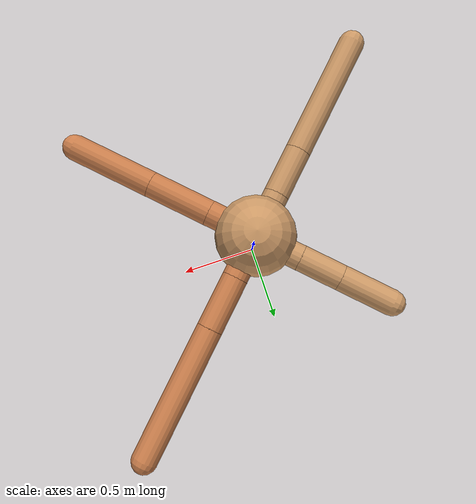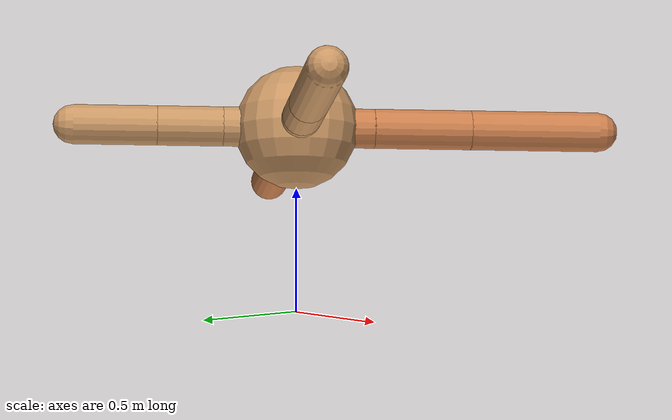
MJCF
<mujoco model="ant">
  <compiler angle="degree" coordinate="local" inertiafromgeom="true" />
  <option integrator="RK4" timestep="0.01" />
  <custom>
    <numeric data="0.0 0.0 0.55 1.0 0.0 0.0 0.0 0.0 1.0 0.0 -1.0 0.0 -1.0 0.0 1.0" name="init_qpos" />
  </custom>
  <default>
    <joint armature="1" damping="1" limited="true" />
    <geom conaffinity="0" condim="3" density="5.0" friction="1.5 0.1 0.1" margin="0.01" rgba="0.8 0.6 0.4 1" />
  </default>
  <worldbody>
    <body name="torso" pos="0 0 0.75">
      <geom name="torso_geom" pos="0 0 0" size="0.25" type="sphere" />

      <body name="front_left_leg" pos="0 0 0">
        <geom fromto="0.0 0.0 0.0 0.2 0.2 0.0" name="aux_1_geom" size="0.08" type="capsule" rgba=".8 .5 .3 1" />
        <body name="aux_1" pos="0.2 0.2 0.0">
          <joint axis="0 0 1" name="hip_1" pos="0.0 0.0 0.0" range="-40 40" type="hinge" />
          <geom fromto="0.0 0.0 0.0 0.2384781346265209 0.2384781346265209 0.0" name="left_leg_geom" size="0.08" type="capsule" rgba=".8 .5 .3 1" />
          <body pos="0.2384781346265209 0.2384781346265209 0.0" name="front_left_foot">
            <joint axis="-1 1 0" name="ankle_1" pos="0.0 0.0 0.0" range="30 100" type="hinge" />
            <geom fromto="0.0 0.0 0.0 0.5965523766626495 0.5965523766626495 0.0" name="left_ankle_geom" size="0.08" type="capsule" rgba=".8 .5 .3 1" />
          </body>
        </body>
      </body>
      <body name="front_right_leg" pos="0 0 0">
        <geom fromto="0.0 0.0 0.0 -0.21099090591503505 0.21099090591503505 0.0" name="aux_2_geom" size="0.08" type="capsule" />
        <body name="aux_2" pos="-0.21099090591503505 0.21099090591503505 0.0">
          <joint axis="0 0 1" name="hip_2" pos="0.0 0.0 0.0" range="-40 40" type="hinge" />
          <geom fromto="0.0 0.0 0.0 -0.18842142900307368 0.18842142900307368 0.0" name="right_leg_geom" size="0.08" type="capsule" />
          <body pos="-0.18842142900307368 0.18842142900307368 0.0" name="front_right_foot">
            <joint axis="1 1 0" name="ankle_2" pos="0.0 0.0 0.0" range="-100 -30" type="hinge" />
            <geom fromto="0.0 0.0 0.0 -0.23947868931685995 0.23947868931685995 0.0" name="right_ankle_geom" size="0.08" type="capsule" />
          </body>
        </body>
      </body>
      <body name="left_back_leg" pos="0 0 0">
        <geom fromto="0.0 0.0 0.0 -0.2 -0.2 0.0" name="aux_3_geom" size="0.08" type="capsule" />
        <body name="aux_3" pos="-0.2 -0.2 0.0">
          <joint axis="0 0 1" name="hip_3" pos="0.0 0.0 0.0" range="-40 40" type="hinge" />
          <geom fromto="0.0 0.0 0.0 -0.21292520827114286 -0.21292520827114286 0.0" name="back_leg_geom" size="0.08" type="capsule" />
          <body pos="-0.21292520827114286 -0.21292520827114286 0.0" name="left_back_foot">
            <joint axis="-1 1 0" name="ankle_3" pos="0.0 0.0 0.0" range="-100 -30" type="hinge" />
            <geom fromto="0.0 0.0 0.0 -0.5473888204339087 -0.5473888204339087 0.0" name="third_ankle_geom" size="0.08" type="capsule" />
          </body>
        </body>
      </body>
      <body name="right_back_leg" pos="0 0 0">
        <geom fromto="0.0 0.0 0.0 0.22255939807943126 -0.22255939807943126 0.0" name="aux_4_geom" size="0.08" type="capsule" rgba=".8 .5 .3 1" />
        <body name="aux_4" pos="0.22255939807943126 -0.22255939807943126 0.0">
          <joint axis="0 0 1" name="hip_4" pos="0.0 0.0 0.0" range="-40 40" type="hinge" />
          <geom fromto="0.0 0.0 0.0 0.2791683308230353 -0.2791683308230353 0.0" name="rightback_leg_geom" size="0.08" type="capsule" rgba=".8 .5 .3 1" />
          <body pos="0.2791683308230353 -0.2791683308230353 0.0" name="right_back_foot">
            <joint axis="1 1 0" name="ankle_4" pos="0.0 0.0 0.0" range="30 100" type="hinge" />
            <geom fromto="0.0 0.0 0.0 0.369070007598694 -0.369070007598694 0.0" name="fourth_ankle_geom" size="0.08" type="capsule" rgba=".8 .5 .3 1" />
          </body>
        </body>
      </body>
    </body>
  </worldbody>
  <actuator>
    <motor ctrllimited="true" ctrlrange="-1.0 1.0" joint="hip_4" gear="150" />
    <motor ctrllimited="true" ctrlrange="-1.0 1.0" joint="ankle_4" gear="150" />
    <motor ctrllimited="true" ctrlrange="-1.0 1.0" joint="hip_1" gear="150" />
    <motor ctrllimited="true" ctrlrange="-1.0 1.0" joint="ankle_1" gear="150" />
    <motor ctrllimited="true" ctrlrange="-1.0 1.0" joint="hip_2" gear="150" />
    <motor ctrllimited="true" ctrlrange="-1.0 1.0" joint="ankle_2" gear="150" />
    <motor ctrllimited="true" ctrlrange="-1.0 1.0" joint="hip_3" gear="150" />
    <motor ctrllimited="true" ctrlrange="-1.0 1.0" joint="ankle_3" gear="150" />
  </actuator>
</mujoco>
